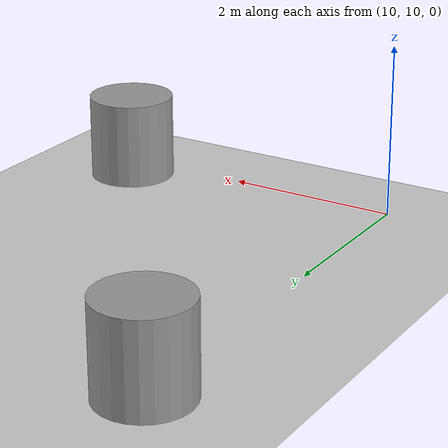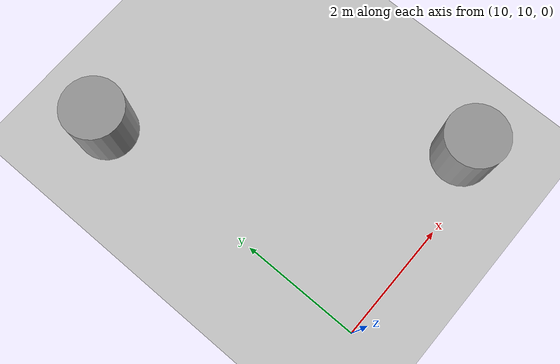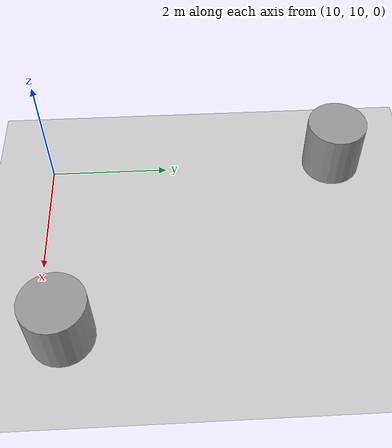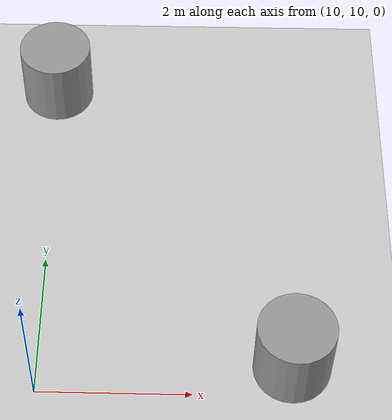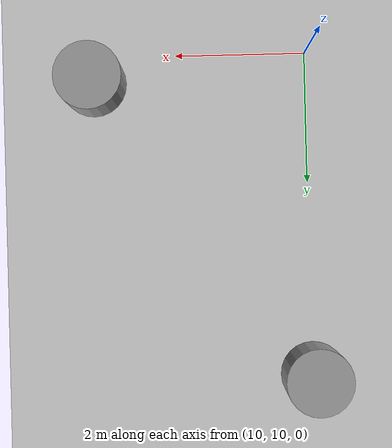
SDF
<sdf version="1.6">
 <world name="default">
  <light name="sun" type="directional">
   <pose>0 0 10 0 -0 0</pose>
   <diffuse>0.8 0.8 0.8 1</diffuse>
   <specular>0.2 0.2 0.2 1</specular>
   <attenuation>
    <range>1000</range>
    <constant>0.9</constant>
    <linear>0.01</linear>
    <quadratic>0.001</quadratic>
   </attenuation>
   <direction>-0.5 0.1 -0.9</direction>
  </light>
  <model name="ground_plane">
   <static>1</static>
   <link name="link">
    <collision name="collision">
     <geometry><plane><normal>0 0 1</normal><size>100 100</size></plane></geometry>
     <surface>
      <contact><collide_bitmask>65535</collide_bitmask></contact>
      <friction><ode><mu>100</mu><mu2>50</mu2></ode></friction>
     </surface>
    </collision>
    <visual name="visual">
     <cast_shadows>0</cast_shadows>
     <geometry><plane><normal>0 0 1</normal><size>100 100</size></plane></geometry>
     <material>
      <script><uri>file://media/materials/scripts/gazebo.material</uri><name>Gazebo/Grey</name></script>
     </material>
    </visual>
   </link>
  </model>
  <gravity>0 0 -9.8</gravity>
  <magnetic_field>6e-06 2.3e-05 -4.2e-05</magnetic_field>
  <atmosphere type="adiabatic"/>
  <physics name="default_physics" default="0" type="ode">
   <max_step_size>0.001</max_step_size>
   <real_time_factor>1</real_time_factor>
   <real_time_update_rate>1000</real_time_update_rate>
  </physics>
  <scene><ambient>0.4 0.4 0.4 1</ambient><background>0.7 0.7 0.7 1</background><shadows>1</shadows></scene>
  <audio><device>default</device></audio>
  <spherical_coordinates>
   <surface_model>EARTH_WGS84</surface_model>
   <latitude_deg>0</latitude_deg>
   <longitude_deg>0</longitude_deg>
   <elevation>0</elevation>
   <heading_deg>0</heading_deg>
  </spherical_coordinates>
  <model name="unit_cylinder">
   <pose>13.265 10.4092 0.499993 -3e-06 -4e-06 -0</pose>
   <link name="link">
    <inertial>
     <mass>1</mass>
     <inertia><ixx>0.145833</ixx><ixy>0</ixy><ixz>0</ixz><iyy>0.145833</iyy><iyz>0</iyz><izz>0.125</izz></inertia>
    </inertial>
    <collision name="collision">
     <geometry><cylinder><radius>0.5</radius><length>1</length></cylinder></geometry>
    </collision>
    <visual name="visual">
     <geometry><cylinder><radius>0.5</radius><length>1</length></cylinder></geometry>
     <material>
      <script><name>Gazebo/Grey</name><uri>file://media/materials/scripts/gazebo.material</uri></script>
     </material>
    </visual>
   </link>
  </model>
  <model name="unit_cylinder_0">
   <pose>9.97873 14.9677 0.499997 3e-06 4e-06 -0</pose>
   <link name="link">
    <inertial>
     <mass>1</mass>
     <inertia><ixx>0.145833</ixx><ixy>0</ixy><ixz>0</ixz><iyy>0.145833</iyy><iyz>0</iyz><izz>0.125</izz></inertia>
    </inertial>
    <collision name="collision">
     <geometry><cylinder><radius>0.5</radius><length>1</length></cylinder></geometry>
    </collision>
    <visual name="visual">
     <geometry><cylinder><radius>0.5</radius><length>1</length></cylinder></geometry>
     <material>
      <script><name>Gazebo/Grey</name><uri>file://media/materials/scripts/gazebo.material</uri></script>
     </material>
    </visual>
   </link>
  </model>
  <light name="user_point_light_0" type="point">
   <pose>12.0785 13.0842 1 0 -0 0</pose>
   <diffuse>0.5 0.5 0.5 1</diffuse>
   <specular>0.1 0.1 0.1 1</specular>
   <attenuation>
    <range>20</range>
    <constant>0.5</constant>
    <linear>0.01</linear>
    <quadratic>0.001</quadratic>
   </attenuation>
   <cast_shadows>0</cast_shadows>
   <direction>0 0 -1</direction>
  </light>
  <light name="user_point_light_1" type="point">
   <pose>7.92229 16.3629 1 0 -0 0</pose>
   <diffuse>0.5 0.5 0.5 1</diffuse>
   <specular>0.1 0.1 0.1 1</specular>
   <attenuation>
    <range>20</range>
    <constant>0.5</constant>
    <linear>0.01</linear>
    <quadratic>0.001</quadratic>
   </attenuation>
   <cast_shadows>0</cast_shadows>
   <direction>0 0 -1</direction>
  </light>
  <light name="user_point_light_2" type="point">
   <pose>14.5861 8.23603 1 0 -0 0</pose>
   <diffuse>0.5 0.5 0.5 1</diffuse>
   <specular>0.1 0.1 0.1 1</specular>
   <attenuation>
    <range>20</range>
    <constant>0.5</constant>
    <linear>0.01</linear>
    <quadratic>0.001</quadratic>
   </attenuation>
   <cast_shadows>0</cast_shadows>
   <direction>0 0 -1</direction>
  </light>
  <light name="user_spot_light_0" type="spot">
   <pose>9.33858 14.2324 1 0 -0 0</pose>
   <diffuse>0.5 0.5 0.5 1</diffuse>
   <specular>0.1 0.1 0.1 1</specular>
   <direction>0 0 -1</direction>
   <attenuation>
    <range>20</range>
    <constant>0.5</constant>
    <linear>0.01</linear>
    <quadratic>0.001</quadratic>
   </attenuation>
   <cast_shadows>0</cast_shadows>
   <spot><inner_angle>0.6</inner_angle><outer_angle>1</outer_angle><falloff>1</falloff></spot>
  </light>
  <light name="user_spot_light_1" type="spot">
   <pose>12.4781 9.77725 1 0 -0 0</pose>
   <diffuse>0.5 0.5 0.5 1</diffuse>
   <specular>0.1 0.1 0.1 1</specular>
   <direction>0 0 -1</direction>
   <attenuation>
    <range>20</range>
    <constant>0.5</constant>
    <linear>0.01</linear>
    <quadratic>0.001</quadratic>
   </attenuation>
   <cast_shadows>0</cast_shadows>
   <spot><inner_angle>0.6</inner_angle><outer_angle>1</outer_angle><falloff>1</falloff></spot>
  </light>
 </world>
</sdf>
